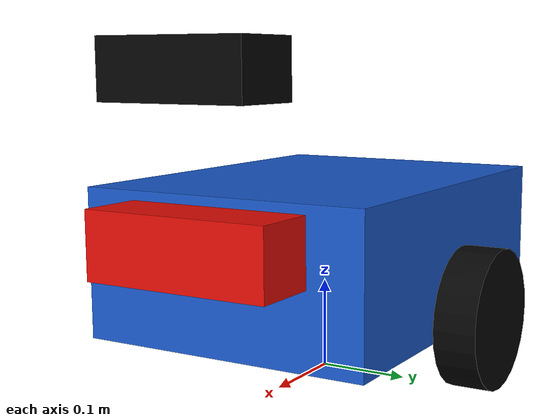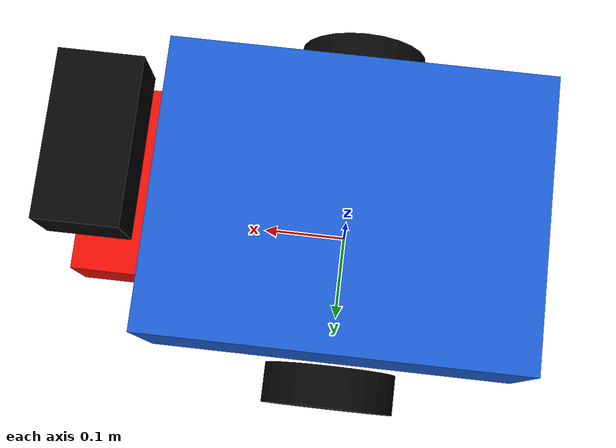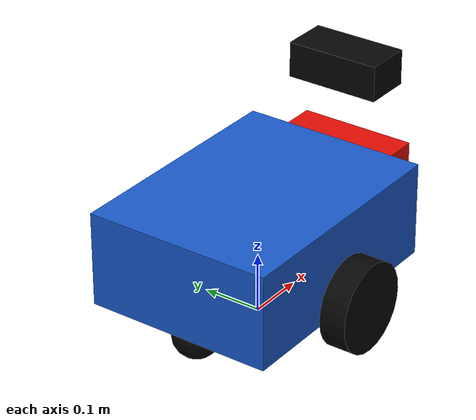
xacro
<?xml version="1.0"?>
<robot xmlns:xacro="http://www.ros.org/wiki/xacro" name="home_bot">
  <material name="blue">
    <color rgba="0.1 0.35 0.8 1"/>
  </material>
  <material name="black">
    <color rgba="0.02 0.02 0.02 1"/>
  </material>
  <material name="red">
    <color rgba="0.9 0.05 0.02 1"/>
  </material>

  <link name="base_link">
    <visual>
      <origin xyz="0 0 0.14"/>
      <geometry>
        <box size="0.42 0.32 0.16"/>
      </geometry>
      <material name="blue"/>
    </visual>
    <collision>
      <origin xyz="0 0 0.14"/>
      <geometry>
        <box size="0.42 0.32 0.16"/>
      </geometry>
    </collision>
    <visual>
      <origin xyz="0.245 0 0.175"/>
      <geometry>
        <box size="0.07 0.20 0.07"/>
      </geometry>
      <material name="red"/>
    </visual>
  </link>

  <link name="left_wheel">
    <visual>
      <origin xyz="0 0 0" rpy="1.570796 0 0"/>
      <geometry>
        <cylinder radius="0.075" length="0.045"/>
      </geometry>
      <material name="black"/>
    </visual>
  </link>

  <link name="right_wheel">
    <visual>
      <origin xyz="0 0 0" rpy="1.570796 0 0"/>
      <geometry>
        <cylinder radius="0.075" length="0.045"/>
      </geometry>
      <material name="black"/>
    </visual>
  </link>

  <link name="caster">
    <visual>
      <geometry>
        <sphere radius="0.04"/>
      </geometry>
      <material name="black"/>
    </visual>
  </link>

  <link name="imu_link"/>

  <link name="camera_link">
    <visual>
      <geometry>
        <box size="0.08 0.16 0.06"/>
      </geometry>
      <material name="black"/>
    </visual>
  </link>

  <joint name="left_wheel_joint" type="continuous">
    <parent link="base_link"/>
    <child link="left_wheel"/>
    <origin xyz="0 0.19 0.08" rpy="0 0 0"/>
    <axis xyz="0 1 0"/>
  </joint>

  <joint name="right_wheel_joint" type="continuous">
    <parent link="base_link"/>
    <child link="right_wheel"/>
    <origin xyz="0 -0.19 0.08" rpy="0 0 0"/>
    <axis xyz="0 1 0"/>
  </joint>

  <joint name="caster_joint" type="fixed">
    <parent link="base_link"/>
    <child link="caster"/>
    <origin xyz="-0.16 0 0.04"/>
  </joint>

  <joint name="imu_joint" type="fixed">
    <parent link="base_link"/>
    <child link="imu_link"/>
    <origin xyz="0 0 0.24"/>
  </joint>

  <joint name="camera_joint" type="fixed">
    <parent link="base_link"/>
    <child link="camera_link"/>
    <origin xyz="0.24 0 0.34"/>
  </joint>
</robot>
